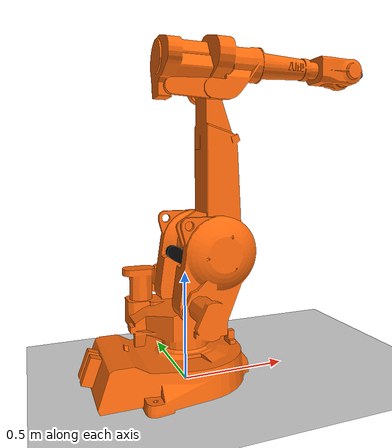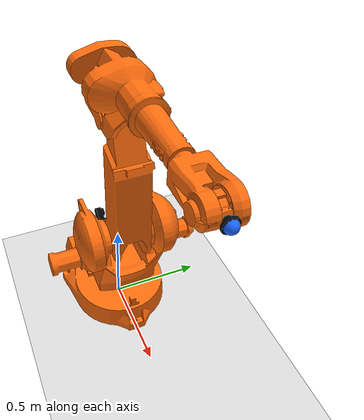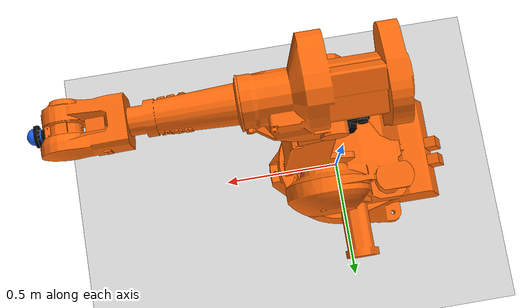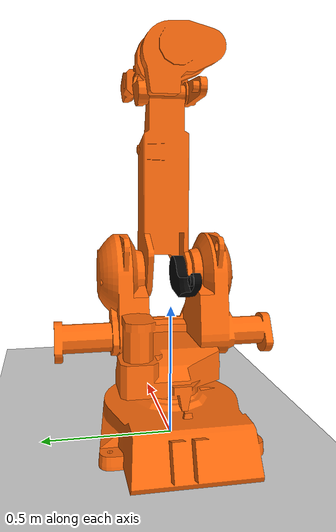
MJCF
<mujoco model="ABB IRB2400-12/1.55">
  <compiler angle="radian" meshdir="abb_irb2400_assets"/>

  <option timestep="0.002" integrator="RK4"/>

  <default>
    <joint damping="2" armature="0.01"/>
    <geom type="mesh" mass="0" contype="0" conaffinity="0" friction="0.8 0.005 0.0001" rgba="1.0 0.42 0.05 1"/>
  </default>

  <asset>
    <mesh name="base_link_mesh" file="base_link_visual.stl"/>
    <mesh name="link_1_mesh" file="link_1_visual.stl"/>
    <mesh name="link_2_mesh" file="link_2_visual.stl"/>
    <mesh name="link_3_mesh" file="link_3_visual.stl"/>
    <mesh name="link_4_mesh" file="link_4_visual.stl"/>
    <mesh name="link_5_mesh" file="link_5_visual.stl"/>
    <mesh name="link_6_mesh" file="link_6_visual.stl"/>
    <mesh name="link_lever_a_mesh" file="link_lever_a_visual.stl"/>
    <mesh name="link_lever_b_mesh" file="link_lever_b_visual.stl"/>
  </asset>

  <worldbody>
    <light name="top" pos="0 0 4" dir="0 0 -1"/>
    <geom name="ground" type="plane" pos="0 0 0" size="5 5 0.1" rgba="0.85 0.85 0.85 1"/>
    <body name="base_link" pos="0 0 0">
      <inertial pos="-0.1007 0.0004 0.0898" mass="80" diaginertia="4.0 3.0 1.8"/>
      <geom name="base_link_geom" mesh="base_link_mesh"/>

      <body name="link_1" pos="0 0 0">
        <inertial pos="0.0121 0.0254 0.4706" mass="150" diaginertia="9.0 7.0 5.5"/>
        <joint name="joint_1" type="hinge" axis="0 0 1" limited="true" range="-3.1416 3.1416"/>
        <geom name="link_1_geom" mesh="link_1_mesh"/>

        <body name="link_2" pos="0.1 0 0.615">
          <inertial pos="0.0315 -0.0067 0.2622" mass="60" diaginertia="2.5 2.3 0.45"/>
          <joint name="joint_2" type="hinge" axis="0 1 0" limited="true" range="-1.7453 1.9199"/>
          <geom name="link_2_geom" mesh="link_2_mesh"/>
          <body name="link_lever_a" pos="0 0 0">
            <inertial pos="-0.0627 -0.0584 -0.0080" mass="2" diaginertia="0.010 0.0085 0.0025"/>
            <geom name="link_lever_a_geom" mesh="link_lever_a_mesh" rgba="0.02 0.02 0.02 1"/>
          </body>

          <body name="link_3" pos="0 0 0.705">
            <inertial pos="-0.0043 -0.0150 0.0986" mass="35" diaginertia="0.9 0.8 0.4"/>
            <joint name="joint_3" type="hinge" axis="0 1 0" limited="true" range="-1.0472 1.1345"/>
            <geom name="link_3_geom" mesh="link_3_mesh"/>
            <body name="link_lever_b" pos="-0.18 0 0">
              <inertial pos="0.0076 -0.0440 -0.3351" mass="3" diaginertia="0.14 0.14 0.003"/>
              <geom name="link_lever_b_geom" mesh="link_lever_b_mesh" rgba="0.02 0.02 0.02 0"/>
            </body>

            <body name="link_4" pos="0 0 0.135">
              <inertial pos="0.45 0 0" mass="30" diaginertia="0.3 1.0 0.8"/>
              <joint name="joint_4" type="hinge" axis="1 0 0" limited="true" range="-3.49 3.49"/>
              <geom name="link_4_geom" mesh="link_4_mesh"/>

              <body name="link_5" pos="0.755 0 0">
                <inertial pos="0 0 0" mass="12" diaginertia="0.12 0.08 0.08"/>
                <joint name="joint_5" type="hinge" axis="0 1 0" limited="true" range="-2.0944 2.0944"/>
                <geom name="link_5_geom" mesh="link_5_mesh"/>

                <body name="link_6" pos="0 0 0">
                  <inertial pos="0.04 0 0" mass="8" diaginertia="0.04 0.04 0.015"/>
                  <joint name="joint_6" type="hinge" axis="1 0 0" limited="true" range="-6.9813 6.9813"/>
                  <geom name="link_6_geom" mesh="link_6_mesh" rgba="0.02 0.02 0.02 1"/>
                  <body name="tool0" pos="0.085 0 0" quat="0.707106781 0 0.707106781 0">
                    <site name="tool0" size="0.025" rgba="0.1 0.4 1 1"/>
                    <site name="ee_site" size="0.015" rgba="0.1 0.8 0.2 1"/>
                  </body>
                </body>
              </body>
            </body>
          </body>
        </body>
      </body>
    </body>
  </worldbody>

  <actuator>
    <position name="joint_1_position" joint="joint_1" kp="1000" dampratio="1" ctrllimited="true" ctrlrange="-3.1416 3.1416"/>
    <position name="joint_2_position" joint="joint_2" kp="1900" dampratio="1" ctrllimited="true" ctrlrange="-1.7453 1.9199"/>
    <position name="joint_3_position" joint="joint_3" kp="1600" dampratio="1" ctrllimited="true" ctrlrange="-1.0472 1.1345"/>
    <position name="joint_4_position" joint="joint_4" kp="1200" dampratio="1" ctrllimited="true" ctrlrange="-3.49 3.49"/>
    <position name="joint_5_position" joint="joint_5" kp="500" dampratio="1" ctrllimited="true" ctrlrange="-2.0944 2.0944"/>
    <position name="joint_6_position" joint="joint_6" kp="150" dampratio="1" ctrllimited="true" ctrlrange="-6.9813 6.9813"/>
  </actuator>
</mujoco>
